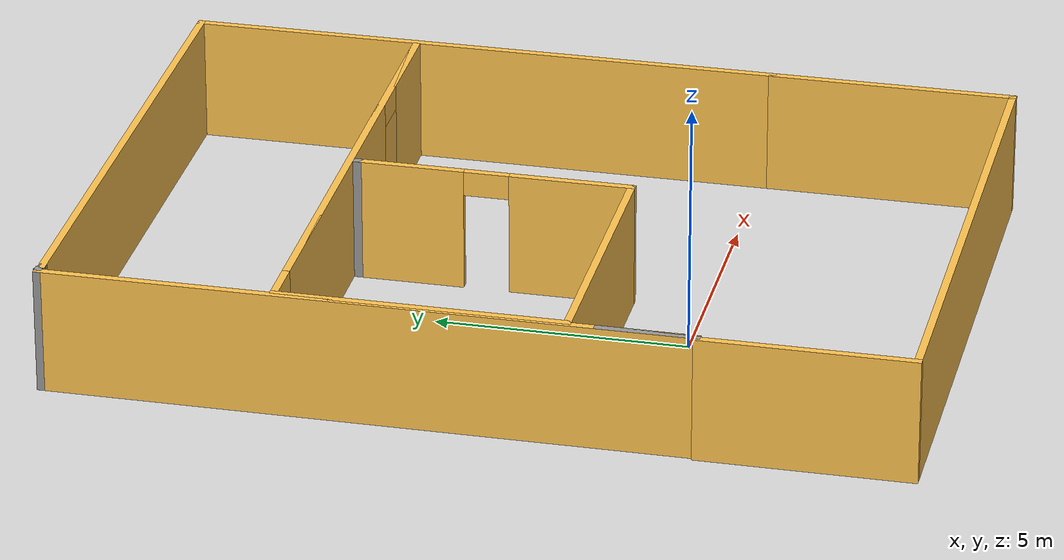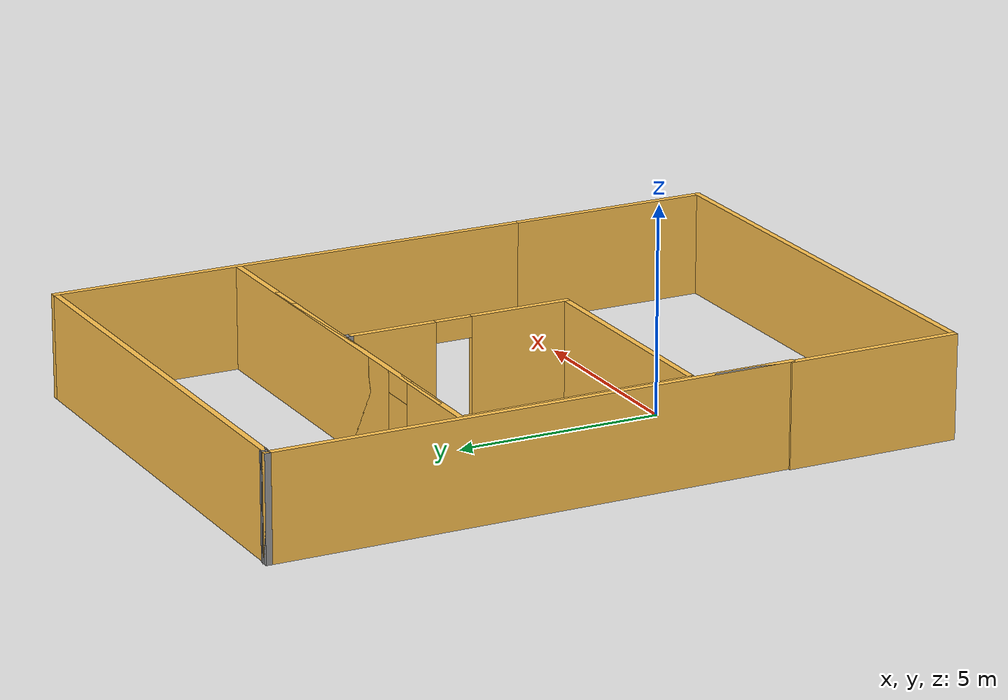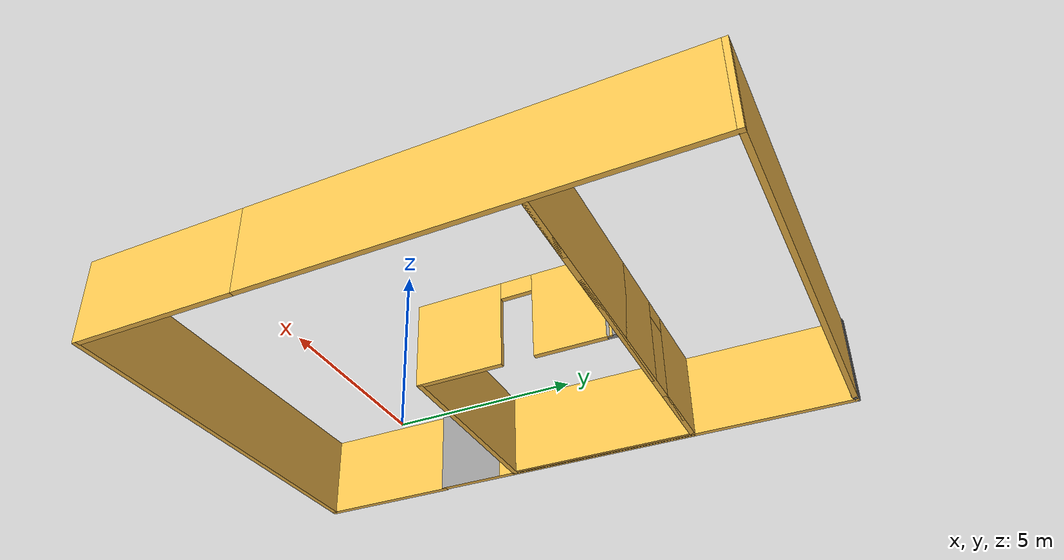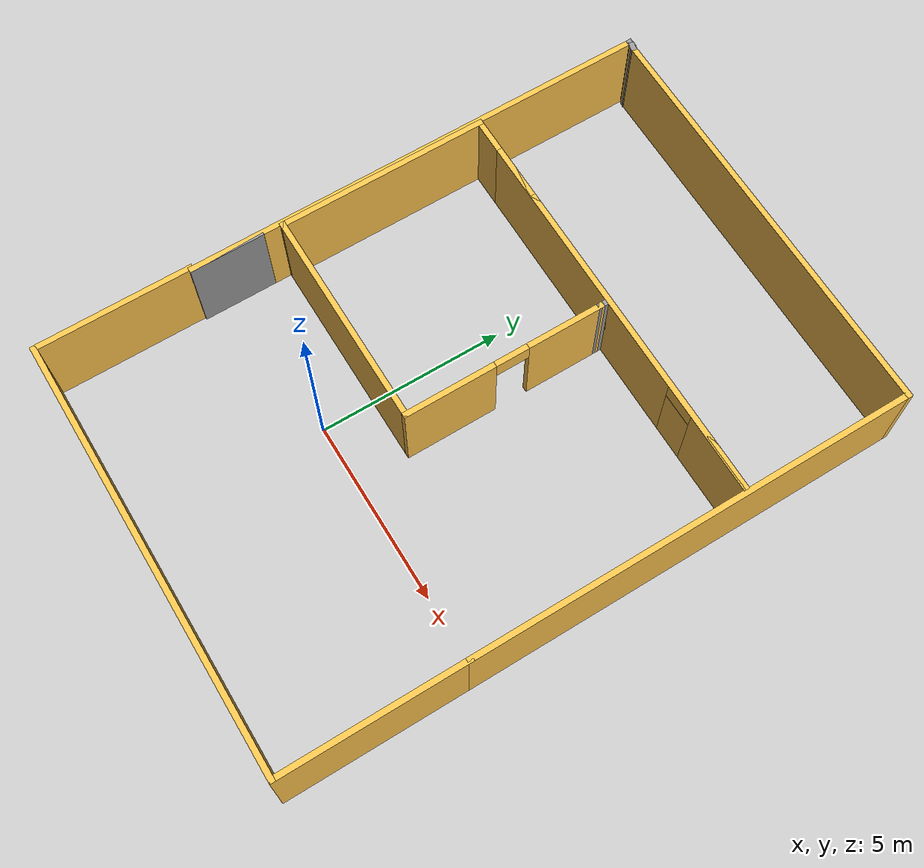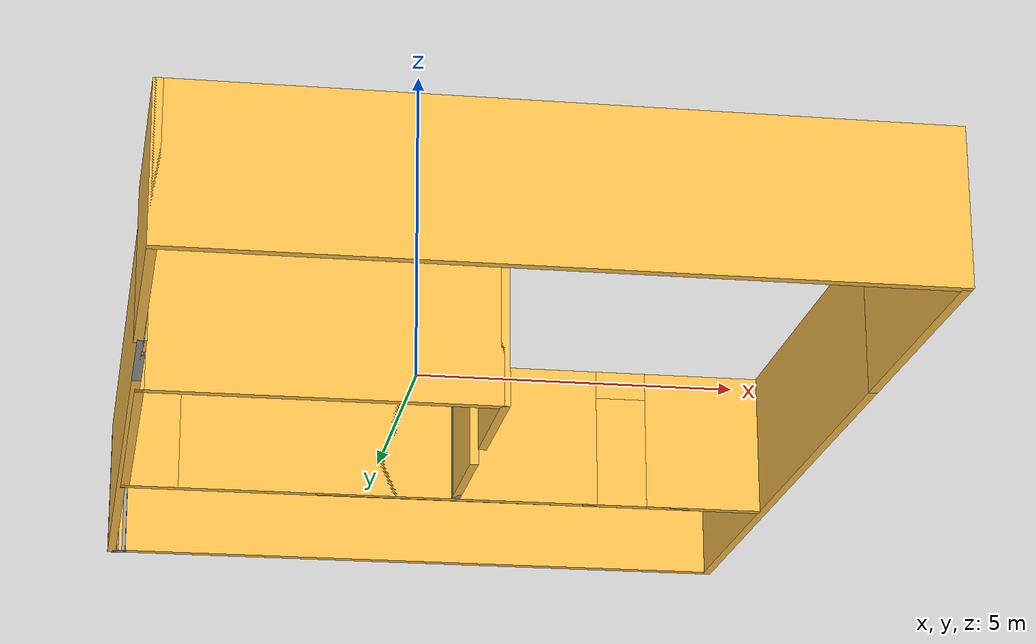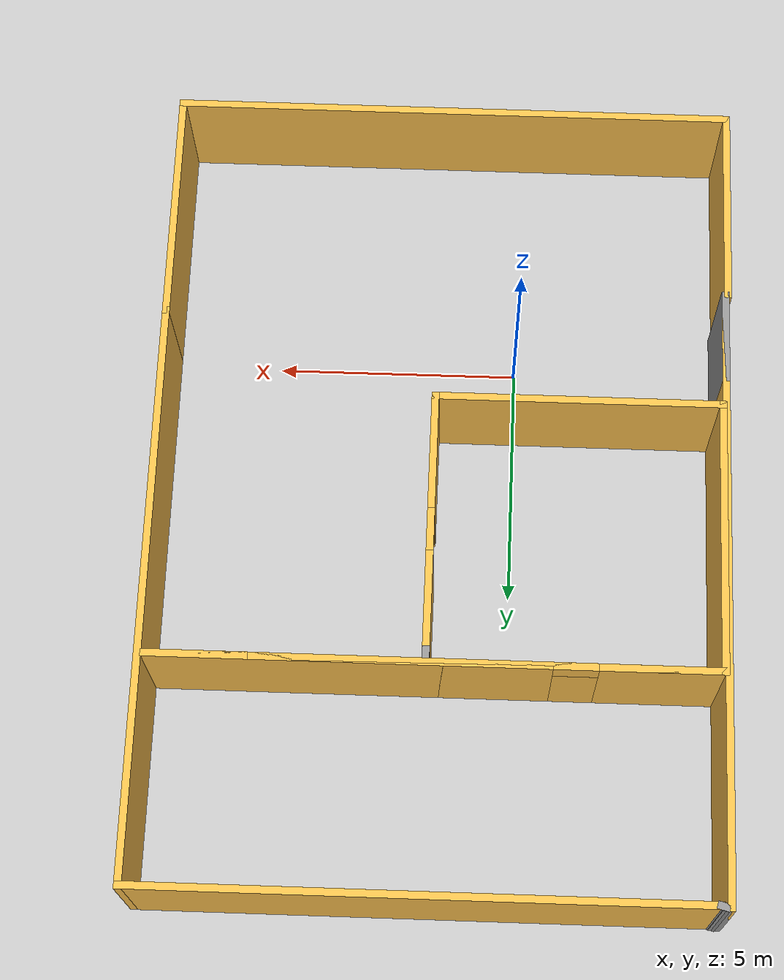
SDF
<?xml version='1.0'?>
<sdf version='1.7'>
  <model name='building2'>
    <pose>1.46 3.28137 0 0 -0 0</pose>
    <link name='Wall_0'>
      <collision name='Wall_0_Collision'>
        <geometry>
          <box>
            <size>4.25 0.15 2.5</size>
          </box>
        </geometry>
        <pose>0 0 1.25 0 -0 0</pose>
      </collision>
      <visual name='Wall_0_Visual'>
        <pose>0 0 1.25 0 -0 0</pose>
        <geometry>
          <box>
            <size>4.25 0.15 2.5</size>
          </box>
        </geometry>
        <material>
          <script>
            <uri>file://media/materials/scripts/gazebo.material</uri>
            <name>Gazebo/Grey</name>
          </script>
          <ambient>1 0.764706 0.305882 1</ambient>
        </material>
        <meta>
          <layer>0</layer>
        </meta>
      </visual>
      <pose>-5.8 -6.32137 0 0 -0 -1.5708</pose>
    </link>
    <link name='Wall_1'>
      <collision name='Wall_1_Collision'>
        <geometry>
          <box>
            <size>11.75 0.15 2.5</size>
          </box>
        </geometry>
        <pose>0 0 1.25 0 -0 0</pose>
      </collision>
      <visual name='Wall_1_Visual'>
        <pose>0 0 1.25 0 -0 0</pose>
        <geometry>
          <box>
            <size>11.75 0.15 2.5</size>
          </box>
        </geometry>
        <material>
          <script>
            <uri>file://media/materials/scripts/gazebo.material</uri>
            <name>Gazebo/Grey</name>
          </script>
          <ambient>1 0.764706 0.305882 1</ambient>
        </material>
        <meta>
          <layer>0</layer>
        </meta>
      </visual>
      <pose>-0 -8.37137 0 0 -0 0</pose>
    </link>
    <link name='Wall_10'>
      <collision name='Wall_10_Collision'>
        <geometry>
          <box>
            <size>10.5 0.15 2.5</size>
          </box>
        </geometry>
        <pose>0 0 1.25 0 -0 0</pose>
      </collision>
      <visual name='Wall_10_Visual'>
        <pose>0 0 1.25 0 -0 0</pose>
        <geometry>
          <box>
            <size>10.5 0.15 2.5</size>
          </box>
        </geometry>
        <material>
          <script>
            <uri>file://media/materials/scripts/gazebo.material</uri>
            <name>Gazebo/Grey</name>
          </script>
          <ambient>1 0.764706 0.305882 1</ambient>
        </material>
        <meta>
          <layer>0</layer>
        </meta>
      </visual>
      <pose>0.497202 3.79652 0 0 -0 0</pose>
    </link>
    <link name='Wall_11'>
      <pose>-0.002798 3.79652 0 0 -0 3.14159</pose>
      <visual name='Wall_11_Visual_0'>
        <pose>-4.69672 0 1.25 0 -0 0</pose>
        <geometry>
          <box>
            <size>2.10657 0.15 2.5</size>
          </box>
        </geometry>
        <material>
          <script>
            <uri>file://media/materials/scripts/gazebo.material</uri>
            <name>Gazebo/Grey</name>
          </script>
          <ambient>1 0.764706 0.305882 1</ambient>
        </material>
        <meta>
          <layer>0</layer>
        </meta>
      </visual>
      <collision name='Wall_11_Collision_0'>
        <geometry>
          <box>
            <size>2.10657 0.15 2.5</size>
          </box>
        </geometry>
        <pose>-4.69672 0 1.25 0 -0 0</pose>
      </collision>
      <visual name='Wall_11_Visual_1'>
        <pose>-0.212516 0 1.25 0 -0 0</pose>
        <geometry>
          <box>
            <size>5.06183 0.15 2.5</size>
          </box>
        </geometry>
        <material>
          <script>
            <uri>file://media/materials/scripts/gazebo.material</uri>
            <name>Gazebo/Grey</name>
          </script>
          <ambient>1 0.764706 0.305882 1</ambient>
        </material>
        <meta>
          <layer>0</layer>
        </meta>
      </visual>
      <collision name='Wall_11_Collision_1'>
        <geometry>
          <box>
            <size>5.06183 0.15 2.5</size>
          </box>
        </geometry>
        <pose>-0.212516 0 1.25 0 -0 0</pose>
      </collision>
      <visual name='Wall_11_Visual_2'>
        <pose>4.4842 0 1.25 0 -0 0</pose>
        <geometry>
          <box>
            <size>2.5316 0.15 2.5</size>
          </box>
        </geometry>
        <material>
          <script>
            <uri>file://media/materials/scripts/gazebo.material</uri>
            <name>Gazebo/Grey</name>
          </script>
          <ambient>1 0.764706 0.305882 1</ambient>
        </material>
        <meta>
          <layer>0</layer>
        </meta>
      </visual>
      <collision name='Wall_11_Collision_2'>
        <geometry>
          <box>
            <size>2.5316 0.15 2.5</size>
          </box>
        </geometry>
        <pose>4.4842 0 1.25 0 -0 0</pose>
      </collision>
      <visual name='Wall_11_Visual_3'>
        <pose>-3.19343 0 2.25 0 -0 0</pose>
        <geometry>
          <box>
            <size>0.9 0.15 0.5</size>
          </box>
        </geometry>
        <material>
          <script>
            <uri>file://media/materials/scripts/gazebo.material</uri>
            <name>Gazebo/Grey</name>
          </script>
          <ambient>1 0.764706 0.305882 1</ambient>
        </material>
        <meta>
          <layer>0</layer>
        </meta>
      </visual>
      <collision name='Wall_11_Collision_3'>
        <geometry>
          <box>
            <size>0.9 0.15 0.5</size>
          </box>
        </geometry>
        <pose>-3.19343 0 2.25 0 -0 0</pose>
      </collision>
      <visual name='Wall_11_Visual_4'>
        <pose>2.7684 0 2.25 0 -0 0</pose>
        <geometry>
          <box>
            <size>0.9 0.15 0.5</size>
          </box>
        </geometry>
        <material>
          <script>
            <uri>file://media/materials/scripts/gazebo.material</uri>
            <name>Gazebo/Grey</name>
          </script>
          <ambient>1 0.764706 0.305882 1</ambient>
        </material>
        <meta>
          <layer>0</layer>
        </meta>
      </visual>
      <collision name='Wall_11_Collision_4'>
        <geometry>
          <box>
            <size>0.9 0.15 0.5</size>
          </box>
        </geometry>
        <pose>2.7684 0 2.25 0 -0 0</pose>
      </collision>
    </link>
    <link name='Wall_12'>
      <collision name='Wall_12_Collision'>
        <geometry>
          <box>
            <size>5.75 0.15 2.5</size>
          </box>
        </geometry>
        <pose>0 0 1.25 0 -0 0</pose>
      </collision>
      <visual name='Wall_12_Visual'>
        <pose>0 0 1.25 0 -0 0</pose>
        <geometry>
          <box>
            <size>5.75 0.15 2.5</size>
          </box>
        </geometry>
        <material>
          <script>
            <uri>file://media/materials/scripts/gazebo.material</uri>
            <name>Gazebo/Grey</name>
          </script>
          <ambient>1 0.764706 0.305882 1</ambient>
        </material>
        <meta>
          <layer>0</layer>
        </meta>
      </visual>
      <pose>-5.6778 0.996518 0 0 -0 -1.5708</pose>
    </link>
    <link name='Wall_13'>
      <collision name='Wall_13_Collision'>
        <geometry>
          <box>
            <size>6 0.15 2.5</size>
          </box>
        </geometry>
        <pose>0 0 1.25 0 -0 0</pose>
      </collision>
      <visual name='Wall_13_Visual'>
        <pose>0 0 1.25 0 -0 0</pose>
        <geometry>
          <box>
            <size>6 0.15 2.5</size>
          </box>
        </geometry>
        <material>
          <script>
            <uri>file://media/materials/scripts/gazebo.material</uri>
            <name>Gazebo/Grey</name>
          </script>
          <ambient>1 0.764706 0.305882 1</ambient>
        </material>
        <meta>
          <layer>0</layer>
        </meta>
      </visual>
      <pose>-2.7528 -1.80348 0 0 -0 0</pose>
    </link>
    <link name='Wall_14'>
      <pose>0.172202 0.871518 0 0 -0 1.5708</pose>
      <visual name='Wall_14_Visual_0'>
        <pose>-1.50462 0 1.25 0 -0 0</pose>
        <geometry>
          <box>
            <size>2.49076 0.15 2.5</size>
          </box>
        </geometry>
        <material>
          <script>
            <uri>file://media/materials/scripts/gazebo.material</uri>
            <name>Gazebo/Grey</name>
          </script>
          <ambient>1 0.764706 0.305882 1</ambient>
        </material>
        <meta>
          <layer>0</layer>
        </meta>
      </visual>
      <collision name='Wall_14_Collision_0'>
        <geometry>
          <box>
            <size>2.49076 0.15 2.5</size>
          </box>
        </geometry>
        <pose>-1.50462 0 1.25 0 -0 0</pose>
      </collision>
      <visual name='Wall_14_Visual_1'>
        <pose>1.69538 0 1.25 0 -0 0</pose>
        <geometry>
          <box>
            <size>2.10924 0.15 2.5</size>
          </box>
        </geometry>
        <material>
          <script>
            <uri>file://media/materials/scripts/gazebo.material</uri>
            <name>Gazebo/Grey</name>
          </script>
          <ambient>1 0.764706 0.305882 1</ambient>
        </material>
        <meta>
          <layer>0</layer>
        </meta>
      </visual>
      <collision name='Wall_14_Collision_1'>
        <geometry>
          <box>
            <size>2.10924 0.15 2.5</size>
          </box>
        </geometry>
        <pose>1.69538 0 1.25 0 -0 0</pose>
      </collision>
      <visual name='Wall_14_Visual_2'>
        <pose>0.190763 0 2.25 0 -0 0</pose>
        <geometry>
          <box>
            <size>0.9 0.15 0.5</size>
          </box>
        </geometry>
        <material>
          <script>
            <uri>file://media/materials/scripts/gazebo.material</uri>
            <name>Gazebo/Grey</name>
          </script>
          <ambient>1 0.764706 0.305882 1</ambient>
        </material>
        <meta>
          <layer>0</layer>
        </meta>
      </visual>
      <collision name='Wall_14_Collision_2'>
        <geometry>
          <box>
            <size>0.9 0.15 0.5</size>
          </box>
        </geometry>
        <pose>0.190763 0 2.25 0 -0 0</pose>
      </collision>
    </link>
    <link name='Wall_15'>
      <collision name='Wall_15_Collision'>
        <geometry>
          <box>
            <size>0.25 0.15 2.5</size>
          </box>
        </geometry>
        <pose>0 0 1.25 0 -0 0</pose>
      </collision>
      <visual name='Wall_15_Visual'>
        <pose>0 0 1.25 0 -0 0</pose>
        <geometry>
          <box>
            <size>0.25 0.15 2.5</size>
          </box>
        </geometry>
        <material>
          <script>
            <uri>file://media/materials/scripts/gazebo.material</uri>
            <name>Gazebo/Grey</name>
          </script>
          <ambient>1 1 1 1</ambient>
        </material>
        <meta>
          <layer>0</layer>
        </meta>
      </visual>
      <pose>0.172101 3.59658 0 0 -0 1.57281</pose>
    </link>
    <link name='Wall_2'>
      <collision name='Wall_2_Collision'>
        <geometry>
          <box>
            <size>5 0.15 2.5</size>
          </box>
        </geometry>
        <pose>0 0 1.25 0 -0 0</pose>
      </collision>
      <visual name='Wall_2_Visual'>
        <pose>0 0 1.25 0 -0 0</pose>
        <geometry>
          <box>
            <size>5 0.15 2.5</size>
          </box>
        </geometry>
        <material>
          <script>
            <uri>file://media/materials/scripts/gazebo.material</uri>
            <name>Gazebo/Grey</name>
          </script>
          <ambient>1 0.764706 0.305882 1</ambient>
        </material>
        <meta>
          <layer>0</layer>
        </meta>
      </visual>
      <pose>5.8 -5.94637 0 0 -0 1.5708</pose>
    </link>
    <link name='Wall_3'>
      <collision name='Wall_3_Collision'>
        <geometry>
          <box>
            <size>12 0.15 2.5</size>
          </box>
        </geometry>
        <pose>0 0 1.25 0 -0 0</pose>
      </collision>
      <visual name='Wall_3_Visual'>
        <pose>0 0 1.25 0 -0 0</pose>
        <geometry>
          <box>
            <size>12 0.15 2.5</size>
          </box>
        </geometry>
        <material>
          <script>
            <uri>file://media/materials/scripts/gazebo.material</uri>
            <name>Gazebo/Grey</name>
          </script>
          <ambient>1 0.764706 0.305882 1</ambient>
        </material>
        <meta>
          <layer>0</layer>
        </meta>
      </visual>
      <pose>5.8 2.40363 0 0 -0 1.5708</pose>
    </link>
    <link name='Wall_4'>
      <collision name='Wall_4_Collision'>
        <geometry>
          <box>
            <size>11.5 0.15 2.5</size>
          </box>
        </geometry>
        <pose>0 0 1.25 0 -0 0</pose>
      </collision>
      <visual name='Wall_4_Visual'>
        <pose>0 0 1.25 0 -0 0</pose>
        <geometry>
          <box>
            <size>11.5 0.15 2.5</size>
          </box>
        </geometry>
        <material>
          <script>
            <uri>file://media/materials/scripts/gazebo.material</uri>
            <name>Gazebo/Grey</name>
          </script>
          <ambient>1 0.764706 0.305882 1</ambient>
        </material>
        <meta>
          <layer>0</layer>
        </meta>
      </visual>
      <pose>0.125 8.32863 0 0 -0 3.14159</pose>
    </link>
    <link name='Wall_5'>
      <collision name='Wall_5_Collision'>
        <geometry>
          <box>
            <size>0.25 0.15 2.5</size>
          </box>
        </geometry>
        <pose>0 0 1.25 0 -0 0</pose>
      </collision>
      <visual name='Wall_5_Visual'>
        <pose>0 0 1.25 0 -0 0</pose>
        <geometry>
          <box>
            <size>0.25 0.15 2.5</size>
          </box>
        </geometry>
        <material>
          <script>
            <uri>file://media/materials/scripts/gazebo.material</uri>
            <name>Gazebo/Grey</name>
          </script>
          <ambient>1 1 1 1</ambient>
        </material>
        <meta>
          <layer>0</layer>
        </meta>
      </visual>
      <pose>-5.5983 8.34157 0 0 -0 2.87979</pose>
    </link>
    <link name='Wall_6'>
      <collision name='Wall_6_Collision'>
        <geometry>
          <box>
            <size>0.25 0.15 2.5</size>
          </box>
        </geometry>
        <pose>0 0 1.25 0 -0 0</pose>
      </collision>
      <visual name='Wall_6_Visual'>
        <pose>0 0 1.25 0 -0 0</pose>
        <geometry>
          <box>
            <size>0.25 0.15 2.5</size>
          </box>
        </geometry>
        <material>
          <script>
            <uri>file://media/materials/scripts/gazebo.material</uri>
            <name>Gazebo/Grey</name>
          </script>
          <ambient>1 1 1 1</ambient>
        </material>
        <meta>
          <layer>0</layer>
        </meta>
      </visual>
      <pose>-5.69659 8.35451 0 0 -0 3.14159</pose>
    </link>
    <link name='Wall_7'>
      <collision name='Wall_7_Collision'>
        <geometry>
          <box>
            <size>12.75 0.15 2.5</size>
          </box>
        </geometry>
        <pose>0 0 1.25 0 -0 0</pose>
      </collision>
      <visual name='Wall_7_Visual'>
        <pose>0 0 1.25 0 -0 0</pose>
        <geometry>
          <box>
            <size>12.75 0.15 2.5</size>
          </box>
        </geometry>
        <material>
          <script>
            <uri>file://media/materials/scripts/gazebo.material</uri>
            <name>Gazebo/Grey</name>
          </script>
          <ambient>1 0.764706 0.305882 1</ambient>
        </material>
        <meta>
          <layer>0</layer>
        </meta>
      </visual>
      <pose>-5.74659 2.05451 0 0 -0 -1.5708</pose>
    </link>
    <link name='Wall_8'>
      <collision name='Wall_8_Collision'>
        <geometry>
          <box>
            <size>2 0.15 2.5</size>
          </box>
        </geometry>
        <pose>0 0 1.25 0 -0 0</pose>
      </collision>
      <visual name='Wall_8_Visual'>
        <pose>0 0 1.25 0 -0 0</pose>
        <geometry>
          <box>
            <size>2 0.15 2.5</size>
          </box>
        </geometry>
        <material>
          <script>
            <uri>file://media/materials/scripts/gazebo.material</uri>
            <name>Gazebo/Grey</name>
          </script>
          <ambient>1 1 1 1</ambient>
        </material>
        <meta>
          <layer>0</layer>
        </meta>
      </visual>
      <pose>-5.74659 -3.32049 0 0 -0 1.5708</pose>
    </link>
    <static>1</static>
  </model>
</sdf>
